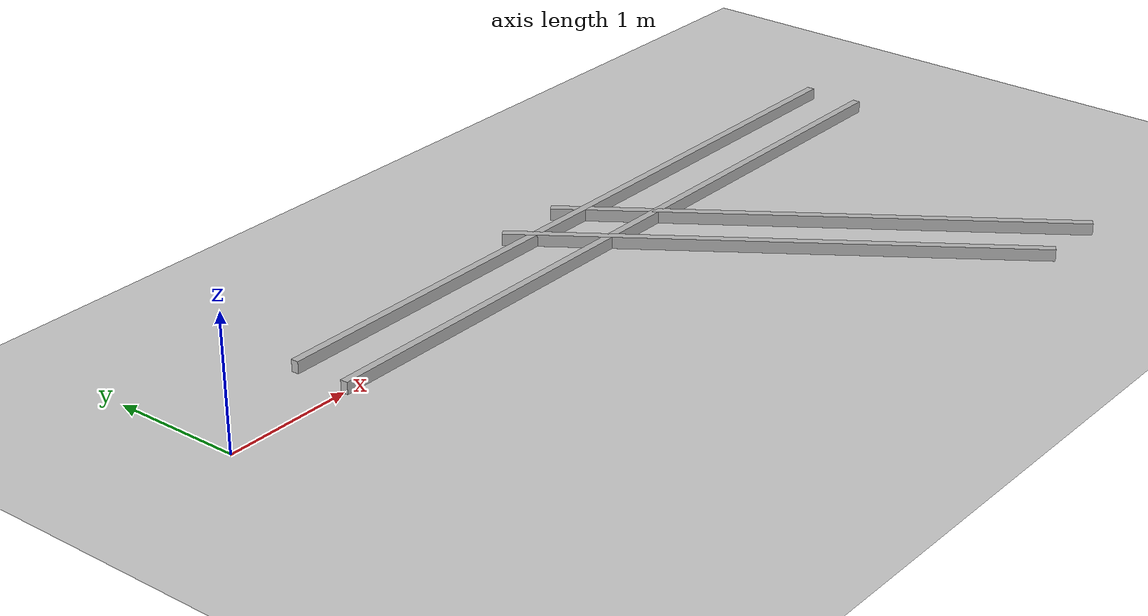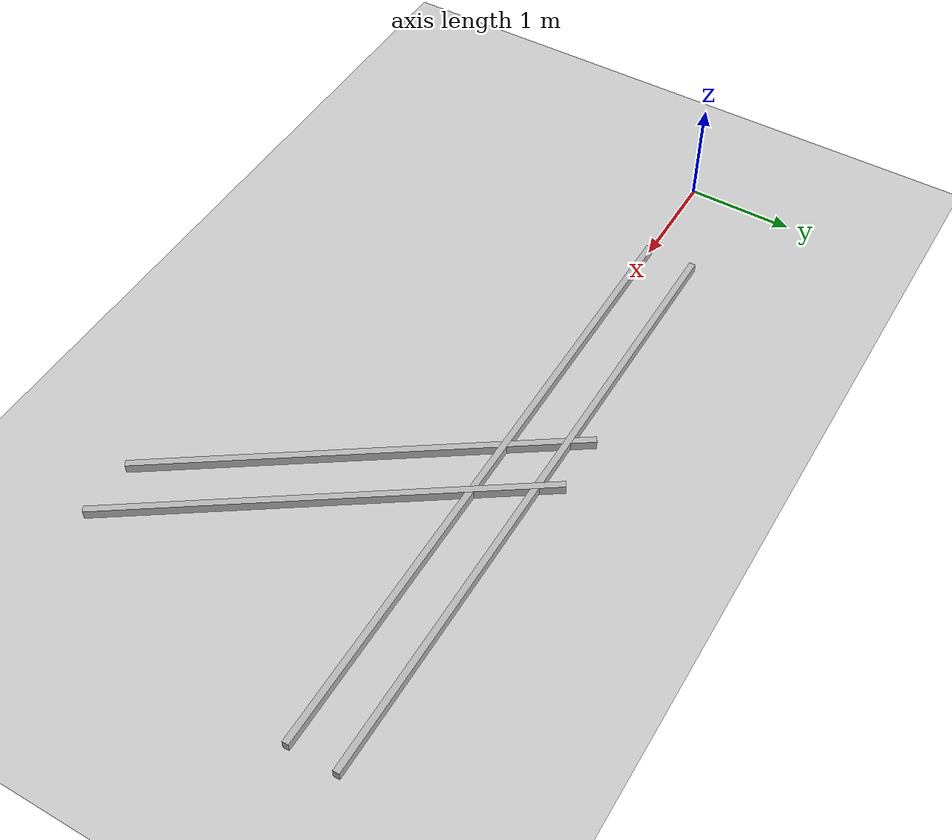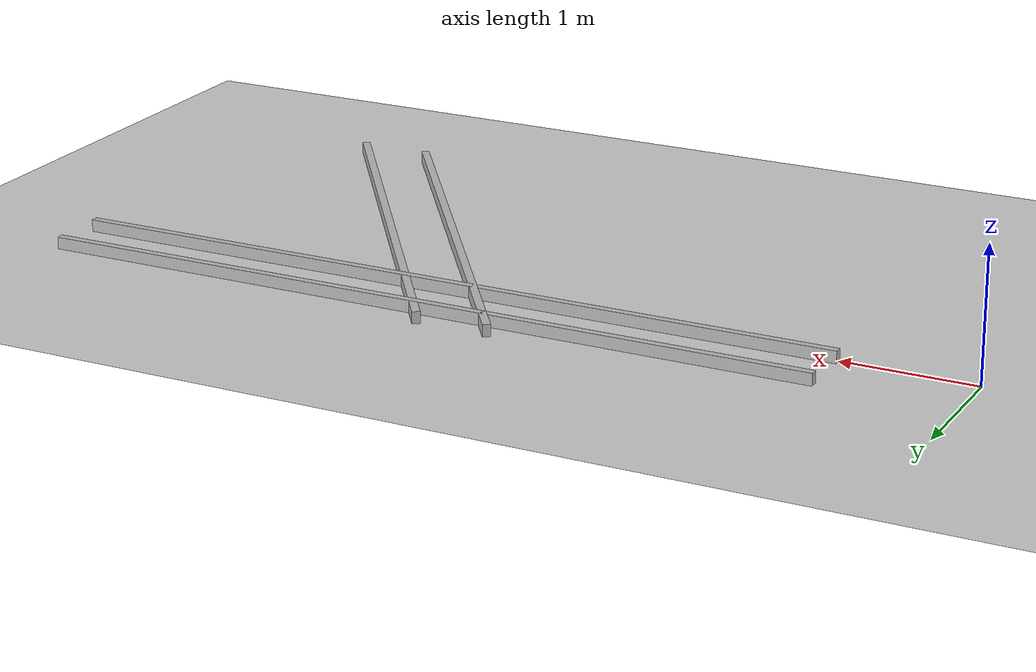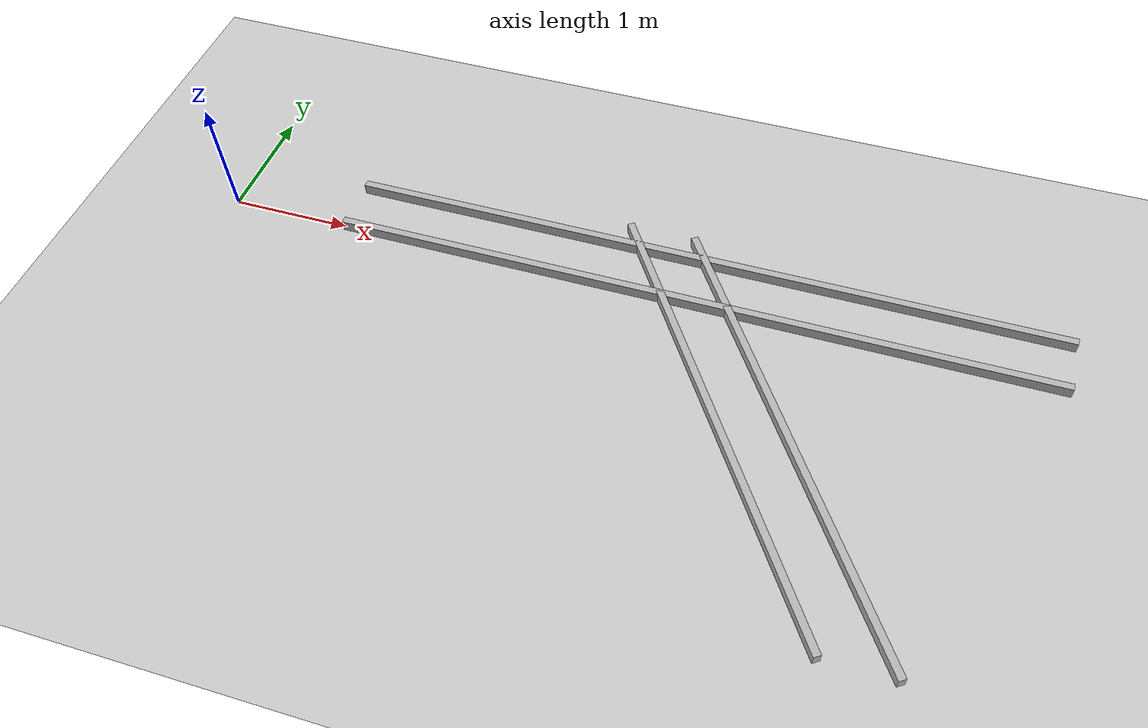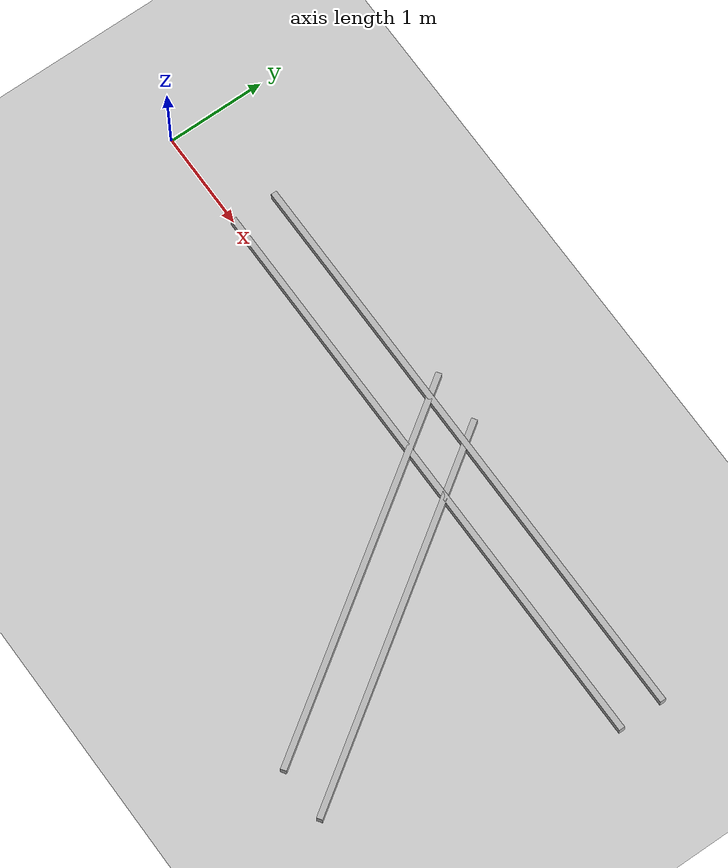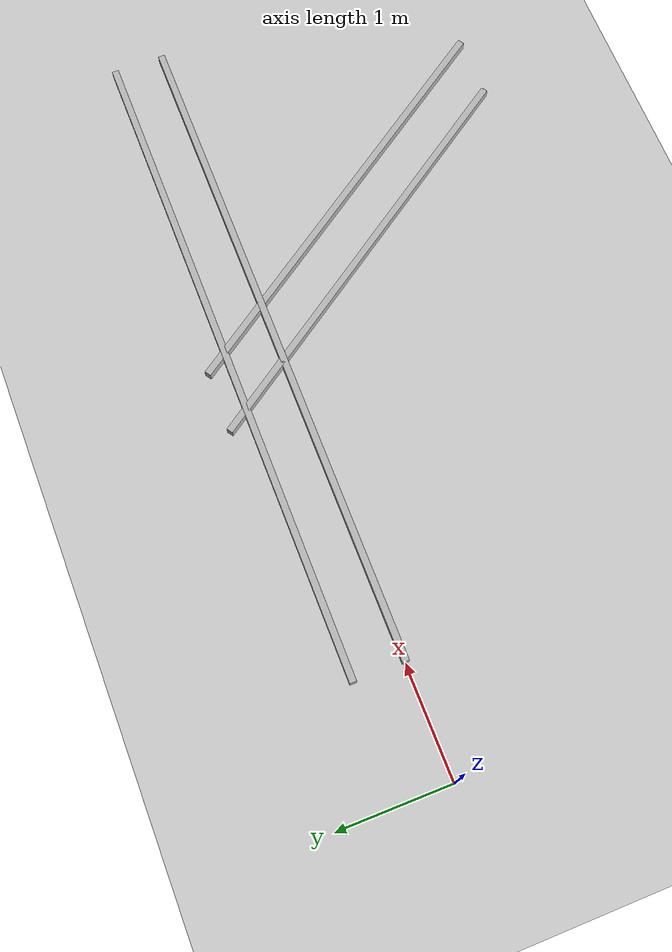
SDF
<?xml version="1.0" ?>
<sdf version="1.4">
  <world name="default">
    <include>
      <uri>model://ground_plane</uri>
    </include>
    <include>
      <uri>model://sun</uri>
    </include>
    <include>
    <uri>model://gazebo_worlds/models/rails</uri>
      <pose>0 0 0 0 0 0</pose>
      <static>true</static>
    </include>

    <physics type="ode">
      <gravity>0 0 -9.81</gravity>
    </physics>
  </world>
</sdf>

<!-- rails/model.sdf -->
<sdf version='1.4'>
  <model name="rails">
    <static>true</static>

    <link name='rail_1'>
      <pose>4.0 0.0 0.0 0.0 0.0 1.57079632679</pose>
      <collision name='collision'>
        <geometry>
          <box>
            <size>0.06 6.0 0.17</size>
          </box>
        </geometry>
      </collision>
      <visual name='visual'>
        <geometry>
          <box>
            <size>0.06 6.0 0.17</size>
          </box>
        </geometry>
      </visual>
    </link>

    <link name='rail_2'>
      <pose>4.0 0.45 0.0 0.0 0.0 1.57079632679</pose>
      <collision name='collision'>
        <geometry>
          <box>
            <size>0.06 6.0 0.17</size>
          </box>
        </geometry>
      </collision>
      <visual name='visual'>
        <geometry>
          <box>
            <size>0.06 6.0 0.17</size>
          </box>
        </geometry>
      </visual>
    </link>

    <link name='rail_3'>
      <pose>5.0 -1.0 0.0 0.0 0.0 0.6</pose>
      <collision name='collision'>
        <geometry>
          <box>
            <size>0.06 4.0 0.17</size>
          </box>
        </geometry>
      </collision>
      <visual name='visual'>
        <geometry>
          <box>
            <size>0.06 4.0 0.17</size>
          </box>
        </geometry>
      </visual>
    </link>

    <link name='rail_4'>
      <pose>4.45 -1.0 0.0 0.0 0.0 0.6</pose>
      <collision name='collision'>
        <geometry>
          <box>
            <size>0.06 4.0 0.17</size>
          </box>
        </geometry>
      </collision>
      <visual name='visual'>
        <geometry>
          <box>
            <size>0.06 4.0 0.17</size>
          </box>
        </geometry>
      </visual>
    </link>
  </model>
</sdf>
